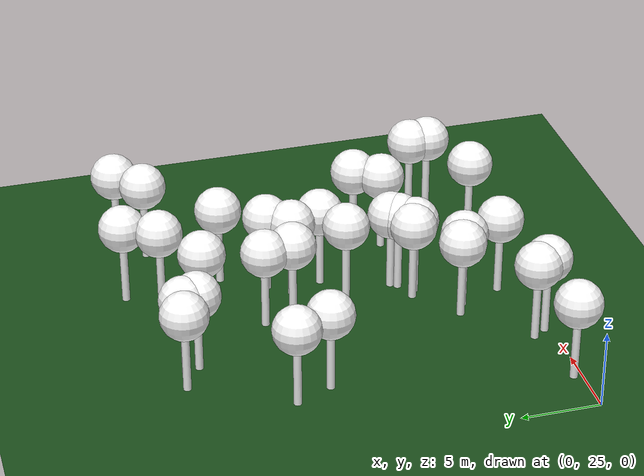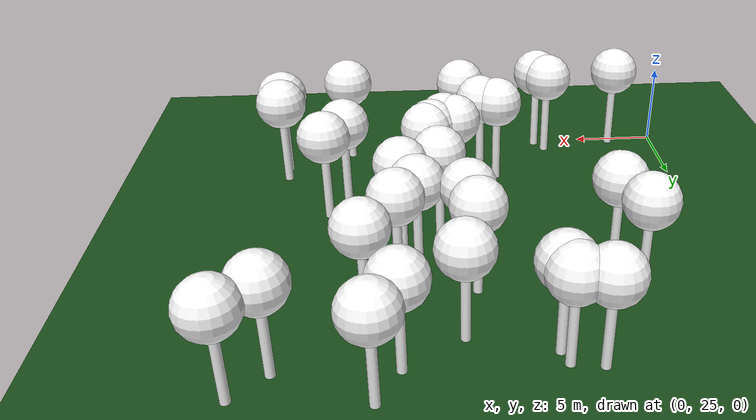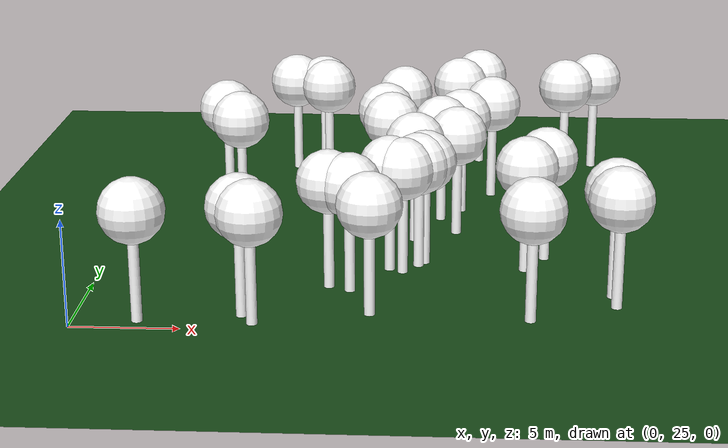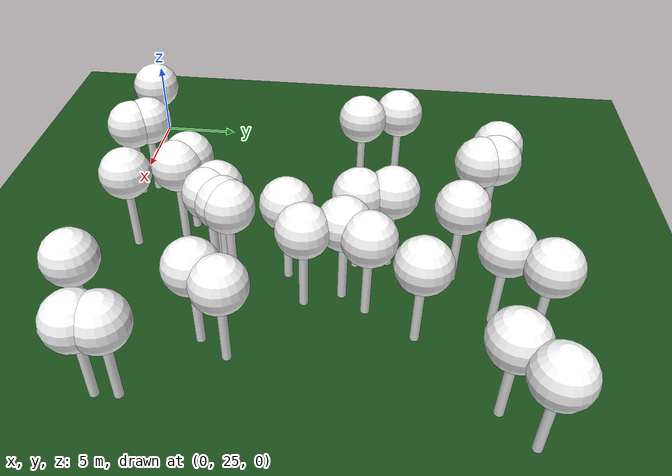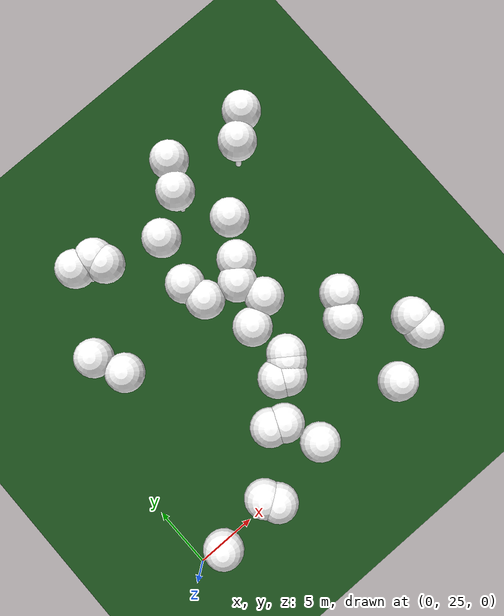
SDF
<sdf version="1.8">
 <world name="forest_world">
  <model name="tree_simple459">
   <static>1</static>
   <link name="link">
    <pose>0 0 0.1 0 -0 0</pose>
    <collision name="collision_trunk">
     <pose>0 0 2 0 -0 0</pose>
     <geometry><cylinder><radius>0.25</radius><length>4</length></cylinder></geometry>
    </collision>
    <collision name="collision_treetop">
     <pose>0 0 5.2 0 -0 0</pose>
     <geometry><sphere><radius>1.5</radius></sphere></geometry>
    </collision>
    <visual name="trunk">
     <pose>0 0 2 0 -0 0</pose>
     <geometry><cylinder><radius>0.25</radius><length>4</length></cylinder></geometry>
     <material>
      <ambient>0.5 0.5 0.5 1</ambient>
      <diffuse>1.0 1.0 1.0 1</diffuse>
      <specular>0.0 0.0 0.0 1</specular>
      <pbr>
       <metal>
        <albedo_map>../worlds/textures/tree_simple_trunk.jpg</albedo_map>
        <metalness>0.0</metalness>
        <roughness>0.8</roughness>
       </metal>
      </pbr>
     </material>
    </visual>
    <visual name="treetop">
     <pose>0 0 5.2 0 -0 0</pose>
     <geometry><sphere><radius>1.5</radius></sphere></geometry>
     <material>
      <ambient>0.5 0.5 0.5 1</ambient>
      <diffuse>1.0 1.0 1.0 1</diffuse>
      <specular>0.0 0.0 0.0 1</specular>
      <pbr>
       <metal>
        <albedo_map>../worlds/textures/tree_simple_treetop.jpg</albedo_map>
        <metalness>0.0</metalness>
        <roughness>0.9</roughness>
       </metal>
      </pbr>
     </material>
    </visual>
   </link>
   <pose>23.3051385383 47.6025012909 0 0 -0 0</pose>
  </model>
  <model name="tree_simple457">
   <static>1</static>
   <link name="link">
    <pose>0 0 0.1 0 -0 0</pose>
    <collision name="collision_trunk">
     <pose>0 0 2 0 -0 0</pose>
     <geometry><cylinder><radius>0.25</radius><length>4</length></cylinder></geometry>
    </collision>
    <collision name="collision_treetop">
     <pose>0 0 5.2 0 -0 0</pose>
     <geometry><sphere><radius>1.5</radius></sphere></geometry>
    </collision>
    <visual name="trunk">
     <pose>0 0 2 0 -0 0</pose>
     <geometry><cylinder><radius>0.25</radius><length>4</length></cylinder></geometry>
     <material>
      <ambient>0.5 0.5 0.5 1</ambient>
      <diffuse>1.0 1.0 1.0 1</diffuse>
      <specular>0.0 0.0 0.0 1</specular>
      <pbr>
       <metal>
        <albedo_map>../worlds/textures/tree_simple_trunk.jpg</albedo_map>
        <metalness>0.0</metalness>
        <roughness>0.8</roughness>
       </metal>
      </pbr>
     </material>
    </visual>
    <visual name="treetop">
     <pose>0 0 5.2 0 -0 0</pose>
     <geometry><sphere><radius>1.5</radius></sphere></geometry>
     <material>
      <ambient>0.5 0.5 0.5 1</ambient>
      <diffuse>1.0 1.0 1.0 1</diffuse>
      <specular>0.0 0.0 0.0 1</specular>
      <pbr>
       <metal>
        <albedo_map>../worlds/textures/tree_simple_treetop.jpg</albedo_map>
        <metalness>0.0</metalness>
        <roughness>0.9</roughness>
       </metal>
      </pbr>
     </material>
    </visual>
   </link>
   <pose>13.2865883098 26.7984826025 0 0 -0 0</pose>
  </model>
  <model name="tree_simple452">
   <static>1</static>
   <link name="link">
    <pose>0 0 0.1 0 -0 0</pose>
    <collision name="collision_trunk">
     <pose>0 0 2 0 -0 0</pose>
     <geometry><cylinder><radius>0.25</radius><length>4</length></cylinder></geometry>
    </collision>
    <collision name="collision_treetop">
     <pose>0 0 5.2 0 -0 0</pose>
     <geometry><sphere><radius>1.5</radius></sphere></geometry>
    </collision>
    <visual name="trunk">
     <pose>0 0 2 0 -0 0</pose>
     <geometry><cylinder><radius>0.25</radius><length>4</length></cylinder></geometry>
     <material>
      <ambient>0.5 0.5 0.5 1</ambient>
      <diffuse>1.0 1.0 1.0 1</diffuse>
      <specular>0.0 0.0 0.0 1</specular>
      <pbr>
       <metal>
        <albedo_map>../worlds/textures/tree_simple_trunk.jpg</albedo_map>
        <metalness>0.0</metalness>
        <roughness>0.8</roughness>
       </metal>
      </pbr>
     </material>
    </visual>
    <visual name="treetop">
     <pose>0 0 5.2 0 -0 0</pose>
     <geometry><sphere><radius>1.5</radius></sphere></geometry>
     <material>
      <ambient>0.5 0.5 0.5 1</ambient>
      <diffuse>1.0 1.0 1.0 1</diffuse>
      <specular>0.0 0.0 0.0 1</specular>
      <pbr>
       <metal>
        <albedo_map>../worlds/textures/tree_simple_treetop.jpg</albedo_map>
        <metalness>0.0</metalness>
        <roughness>0.9</roughness>
       </metal>
      </pbr>
     </material>
    </visual>
   </link>
   <pose>21.4881506157 34.0286005496 0 0 -0 0</pose>
  </model>
  <model name="tree_simple445">
   <static>1</static>
   <link name="link">
    <pose>0 0 0.1 0 -0 0</pose>
    <collision name="collision_trunk">
     <pose>0 0 2 0 -0 0</pose>
     <geometry><cylinder><radius>0.25</radius><length>4</length></cylinder></geometry>
    </collision>
    <collision name="collision_treetop">
     <pose>0 0 5.2 0 -0 0</pose>
     <geometry><sphere><radius>1.5</radius></sphere></geometry>
    </collision>
    <visual name="trunk">
     <pose>0 0 2 0 -0 0</pose>
     <geometry><cylinder><radius>0.25</radius><length>4</length></cylinder></geometry>
     <material>
      <ambient>0.5 0.5 0.5 1</ambient>
      <diffuse>1.0 1.0 1.0 1</diffuse>
      <specular>0.0 0.0 0.0 1</specular>
      <pbr>
       <metal>
        <albedo_map>../worlds/textures/tree_simple_trunk.jpg</albedo_map>
        <metalness>0.0</metalness>
        <roughness>0.8</roughness>
       </metal>
      </pbr>
     </material>
    </visual>
    <visual name="treetop">
     <pose>0 0 5.2 0 -0 0</pose>
     <geometry><sphere><radius>1.5</radius></sphere></geometry>
     <material>
      <ambient>0.5 0.5 0.5 1</ambient>
      <diffuse>1.0 1.0 1.0 1</diffuse>
      <specular>0.0 0.0 0.0 1</specular>
      <pbr>
       <metal>
        <albedo_map>../worlds/textures/tree_simple_treetop.jpg</albedo_map>
        <metalness>0.0</metalness>
        <roughness>0.9</roughness>
       </metal>
      </pbr>
     </material>
    </visual>
   </link>
   <pose>17.3330924595 47.7477611906 0 0 -0 0</pose>
  </model>
  <model name="tree_simple443">
   <static>1</static>
   <link name="link">
    <pose>0 0 0.1 0 -0 0</pose>
    <collision name="collision_trunk">
     <pose>0 0 2 0 -0 0</pose>
     <geometry><cylinder><radius>0.25</radius><length>4</length></cylinder></geometry>
    </collision>
    <collision name="collision_treetop">
     <pose>0 0 5.2 0 -0 0</pose>
     <geometry><sphere><radius>1.5</radius></sphere></geometry>
    </collision>
    <visual name="trunk">
     <pose>0 0 2 0 -0 0</pose>
     <geometry><cylinder><radius>0.25</radius><length>4</length></cylinder></geometry>
     <material>
      <ambient>0.5 0.5 0.5 1</ambient>
      <diffuse>1.0 1.0 1.0 1</diffuse>
      <specular>0.0 0.0 0.0 1</specular>
      <pbr>
       <metal>
        <albedo_map>../worlds/textures/tree_simple_trunk.jpg</albedo_map>
        <metalness>0.0</metalness>
        <roughness>0.8</roughness>
       </metal>
      </pbr>
     </material>
    </visual>
    <visual name="treetop">
     <pose>0 0 5.2 0 -0 0</pose>
     <geometry><sphere><radius>1.5</radius></sphere></geometry>
     <material>
      <ambient>0.5 0.5 0.5 1</ambient>
      <diffuse>1.0 1.0 1.0 1</diffuse>
      <specular>0.0 0.0 0.0 1</specular>
      <pbr>
       <metal>
        <albedo_map>../worlds/textures/tree_simple_treetop.jpg</albedo_map>
        <metalness>0.0</metalness>
        <roughness>0.9</roughness>
       </metal>
      </pbr>
     </material>
    </visual>
   </link>
   <pose>20.4518447393 32.4372971603 0 0 -0 0</pose>
  </model>
  <model name="tree_simple435">
   <static>1</static>
   <link name="link">
    <pose>0 0 0.1 0 -0 0</pose>
    <collision name="collision_trunk">
     <pose>0 0 2 0 -0 0</pose>
     <geometry><cylinder><radius>0.25</radius><length>4</length></cylinder></geometry>
    </collision>
    <collision name="collision_treetop">
     <pose>0 0 5.2 0 -0 0</pose>
     <geometry><sphere><radius>1.5</radius></sphere></geometry>
    </collision>
    <visual name="trunk">
     <pose>0 0 2 0 -0 0</pose>
     <geometry><cylinder><radius>0.25</radius><length>4</length></cylinder></geometry>
     <material>
      <ambient>0.5 0.5 0.5 1</ambient>
      <diffuse>1.0 1.0 1.0 1</diffuse>
      <specular>0.0 0.0 0.0 1</specular>
      <pbr>
       <metal>
        <albedo_map>../worlds/textures/tree_simple_trunk.jpg</albedo_map>
        <metalness>0.0</metalness>
        <roughness>0.8</roughness>
       </metal>
      </pbr>
     </material>
    </visual>
    <visual name="treetop">
     <pose>0 0 5.2 0 -0 0</pose>
     <geometry><sphere><radius>1.5</radius></sphere></geometry>
     <material>
      <ambient>0.5 0.5 0.5 1</ambient>
      <diffuse>1.0 1.0 1.0 1</diffuse>
      <specular>0.0 0.0 0.0 1</specular>
      <pbr>
       <metal>
        <albedo_map>../worlds/textures/tree_simple_treetop.jpg</albedo_map>
        <metalness>0.0</metalness>
        <roughness>0.9</roughness>
       </metal>
      </pbr>
     </material>
    </visual>
   </link>
   <pose>25.0532985597 49.162593115 0 0 -0 0</pose>
  </model>
  <model name="tree_simple419">
   <static>1</static>
   <link name="link">
    <pose>0 0 0.1 0 -0 0</pose>
    <collision name="collision_trunk">
     <pose>0 0 2 0 -0 0</pose>
     <geometry><cylinder><radius>0.25</radius><length>4</length></cylinder></geometry>
    </collision>
    <collision name="collision_treetop">
     <pose>0 0 5.2 0 -0 0</pose>
     <geometry><sphere><radius>1.5</radius></sphere></geometry>
    </collision>
    <visual name="trunk">
     <pose>0 0 2 0 -0 0</pose>
     <geometry><cylinder><radius>0.25</radius><length>4</length></cylinder></geometry>
     <material>
      <ambient>0.5 0.5 0.5 1</ambient>
      <diffuse>1.0 1.0 1.0 1</diffuse>
      <specular>0.0 0.0 0.0 1</specular>
      <pbr>
       <metal>
        <albedo_map>../worlds/textures/tree_simple_trunk.jpg</albedo_map>
        <metalness>0.0</metalness>
        <roughness>0.8</roughness>
       </metal>
      </pbr>
     </material>
    </visual>
    <visual name="treetop">
     <pose>0 0 5.2 0 -0 0</pose>
     <geometry><sphere><radius>1.5</radius></sphere></geometry>
     <material>
      <ambient>0.5 0.5 0.5 1</ambient>
      <diffuse>1.0 1.0 1.0 1</diffuse>
      <specular>0.0 0.0 0.0 1</specular>
      <pbr>
       <metal>
        <albedo_map>../worlds/textures/tree_simple_treetop.jpg</albedo_map>
        <metalness>0.0</metalness>
        <roughness>0.9</roughness>
       </metal>
      </pbr>
     </material>
    </visual>
   </link>
   <pose>15.0608261067 36.3391301174 0 0 -0 0</pose>
  </model>
  <model name="tree_simple413">
   <static>1</static>
   <link name="link">
    <pose>0 0 0.1 0 -0 0</pose>
    <collision name="collision_trunk">
     <pose>0 0 2 0 -0 0</pose>
     <geometry><cylinder><radius>0.25</radius><length>4</length></cylinder></geometry>
    </collision>
    <collision name="collision_treetop">
     <pose>0 0 5.2 0 -0 0</pose>
     <geometry><sphere><radius>1.5</radius></sphere></geometry>
    </collision>
    <visual name="trunk">
     <pose>0 0 2 0 -0 0</pose>
     <geometry><cylinder><radius>0.25</radius><length>4</length></cylinder></geometry>
     <material>
      <ambient>0.5 0.5 0.5 1</ambient>
      <diffuse>1.0 1.0 1.0 1</diffuse>
      <specular>0.0 0.0 0.0 1</specular>
      <pbr>
       <metal>
        <albedo_map>../worlds/textures/tree_simple_trunk.jpg</albedo_map>
        <metalness>0.0</metalness>
        <roughness>0.8</roughness>
       </metal>
      </pbr>
     </material>
    </visual>
    <visual name="treetop">
     <pose>0 0 5.2 0 -0 0</pose>
     <geometry><sphere><radius>1.5</radius></sphere></geometry>
     <material>
      <ambient>0.5 0.5 0.5 1</ambient>
      <diffuse>1.0 1.0 1.0 1</diffuse>
      <specular>0.0 0.0 0.0 1</specular>
      <pbr>
       <metal>
        <albedo_map>../worlds/textures/tree_simple_treetop.jpg</albedo_map>
        <metalness>0.0</metalness>
        <roughness>0.9</roughness>
       </metal>
      </pbr>
     </material>
    </visual>
   </link>
   <pose>4.79772995732 42.1907919742 0 0 -0 0</pose>
  </model>
  <model name="tree_simple405">
   <static>1</static>
   <link name="link">
    <pose>0 0 0.1 0 -0 0</pose>
    <collision name="collision_trunk">
     <pose>0 0 2 0 -0 0</pose>
     <geometry><cylinder><radius>0.25</radius><length>4</length></cylinder></geometry>
    </collision>
    <collision name="collision_treetop">
     <pose>0 0 5.2 0 -0 0</pose>
     <geometry><sphere><radius>1.5</radius></sphere></geometry>
    </collision>
    <visual name="trunk">
     <pose>0 0 2 0 -0 0</pose>
     <geometry><cylinder><radius>0.25</radius><length>4</length></cylinder></geometry>
     <material>
      <ambient>0.5 0.5 0.5 1</ambient>
      <diffuse>1.0 1.0 1.0 1</diffuse>
      <specular>0.0 0.0 0.0 1</specular>
      <pbr>
       <metal>
        <albedo_map>../worlds/textures/tree_simple_trunk.jpg</albedo_map>
        <metalness>0.0</metalness>
        <roughness>0.8</roughness>
       </metal>
      </pbr>
     </material>
    </visual>
    <visual name="treetop">
     <pose>0 0 5.2 0 -0 0</pose>
     <geometry><sphere><radius>1.5</radius></sphere></geometry>
     <material>
      <ambient>0.5 0.5 0.5 1</ambient>
      <diffuse>1.0 1.0 1.0 1</diffuse>
      <specular>0.0 0.0 0.0 1</specular>
      <pbr>
       <metal>
        <albedo_map>../worlds/textures/tree_simple_treetop.jpg</albedo_map>
        <metalness>0.0</metalness>
        <roughness>0.9</roughness>
       </metal>
      </pbr>
     </material>
    </visual>
   </link>
   <pose>13.9640568795 32.2793272532 0 0 -0 0</pose>
  </model>
  <model name="tree_simple401">
   <static>1</static>
   <link name="link">
    <pose>0 0 0.1 0 -0 0</pose>
    <collision name="collision_trunk">
     <pose>0 0 2 0 -0 0</pose>
     <geometry><cylinder><radius>0.25</radius><length>4</length></cylinder></geometry>
    </collision>
    <collision name="collision_treetop">
     <pose>0 0 5.2 0 -0 0</pose>
     <geometry><sphere><radius>1.5</radius></sphere></geometry>
    </collision>
    <visual name="trunk">
     <pose>0 0 2 0 -0 0</pose>
     <geometry><cylinder><radius>0.25</radius><length>4</length></cylinder></geometry>
     <material>
      <ambient>0.5 0.5 0.5 1</ambient>
      <diffuse>1.0 1.0 1.0 1</diffuse>
      <specular>0.0 0.0 0.0 1</specular>
      <pbr>
       <metal>
        <albedo_map>../worlds/textures/tree_simple_trunk.jpg</albedo_map>
        <metalness>0.0</metalness>
        <roughness>0.8</roughness>
       </metal>
      </pbr>
     </material>
    </visual>
    <visual name="treetop">
     <pose>0 0 5.2 0 -0 0</pose>
     <geometry><sphere><radius>1.5</radius></sphere></geometry>
     <material>
      <ambient>0.5 0.5 0.5 1</ambient>
      <diffuse>1.0 1.0 1.0 1</diffuse>
      <specular>0.0 0.0 0.0 1</specular>
      <pbr>
       <metal>
        <albedo_map>../worlds/textures/tree_simple_treetop.jpg</albedo_map>
        <metalness>0.0</metalness>
        <roughness>0.9</roughness>
       </metal>
      </pbr>
     </material>
    </visual>
   </link>
   <pose>18.5119614972 49.8300347258 0 0 -0 0</pose>
  </model>
  <model name="tree_simple381">
   <static>1</static>
   <link name="link">
    <pose>0 0 0.1 0 -0 0</pose>
    <collision name="collision_trunk">
     <pose>0 0 2 0 -0 0</pose>
     <geometry><cylinder><radius>0.25</radius><length>4</length></cylinder></geometry>
    </collision>
    <collision name="collision_treetop">
     <pose>0 0 5.2 0 -0 0</pose>
     <geometry><sphere><radius>1.5</radius></sphere></geometry>
    </collision>
    <visual name="trunk">
     <pose>0 0 2 0 -0 0</pose>
     <geometry><cylinder><radius>0.25</radius><length>4</length></cylinder></geometry>
     <material>
      <ambient>0.5 0.5 0.5 1</ambient>
      <diffuse>1.0 1.0 1.0 1</diffuse>
      <specular>0.0 0.0 0.0 1</specular>
      <pbr>
       <metal>
        <albedo_map>../worlds/textures/tree_simple_trunk.jpg</albedo_map>
        <metalness>0.0</metalness>
        <roughness>0.8</roughness>
       </metal>
      </pbr>
     </material>
    </visual>
    <visual name="treetop">
     <pose>0 0 5.2 0 -0 0</pose>
     <geometry><sphere><radius>1.5</radius></sphere></geometry>
     <material>
      <ambient>0.5 0.5 0.5 1</ambient>
      <diffuse>1.0 1.0 1.0 1</diffuse>
      <specular>0.0 0.0 0.0 1</specular>
      <pbr>
       <metal>
        <albedo_map>../worlds/textures/tree_simple_treetop.jpg</albedo_map>
        <metalness>0.0</metalness>
        <roughness>0.9</roughness>
       </metal>
      </pbr>
     </material>
    </visual>
   </link>
   <pose>14.598493672 31.9609585056 0 0 -0 0</pose>
  </model>
  <model name="tree_simple372">
   <static>1</static>
   <link name="link">
    <pose>0 0 0.1 0 -0 0</pose>
    <collision name="collision_trunk">
     <pose>0 0 2 0 -0 0</pose>
     <geometry><cylinder><radius>0.25</radius><length>4</length></cylinder></geometry>
    </collision>
    <collision name="collision_treetop">
     <pose>0 0 5.2 0 -0 0</pose>
     <geometry><sphere><radius>1.5</radius></sphere></geometry>
    </collision>
    <visual name="trunk">
     <pose>0 0 2 0 -0 0</pose>
     <geometry><cylinder><radius>0.25</radius><length>4</length></cylinder></geometry>
     <material>
      <ambient>0.5 0.5 0.5 1</ambient>
      <diffuse>1.0 1.0 1.0 1</diffuse>
      <specular>0.0 0.0 0.0 1</specular>
      <pbr>
       <metal>
        <albedo_map>../worlds/textures/tree_simple_trunk.jpg</albedo_map>
        <metalness>0.0</metalness>
        <roughness>0.8</roughness>
       </metal>
      </pbr>
     </material>
    </visual>
    <visual name="treetop">
     <pose>0 0 5.2 0 -0 0</pose>
     <geometry><sphere><radius>1.5</radius></sphere></geometry>
     <material>
      <ambient>0.5 0.5 0.5 1</ambient>
      <diffuse>1.0 1.0 1.0 1</diffuse>
      <specular>0.0 0.0 0.0 1</specular>
      <pbr>
       <metal>
        <albedo_map>../worlds/textures/tree_simple_treetop.jpg</albedo_map>
        <metalness>0.0</metalness>
        <roughness>0.9</roughness>
       </metal>
      </pbr>
     </material>
    </visual>
   </link>
   <pose>19.0807104519 43.6051965294 0 0 -0 0</pose>
  </model>
  <model name="tree_simple367">
   <static>1</static>
   <link name="link">
    <pose>0 0 0.1 0 -0 0</pose>
    <collision name="collision_trunk">
     <pose>0 0 2 0 -0 0</pose>
     <geometry><cylinder><radius>0.25</radius><length>4</length></cylinder></geometry>
    </collision>
    <collision name="collision_treetop">
     <pose>0 0 5.2 0 -0 0</pose>
     <geometry><sphere><radius>1.5</radius></sphere></geometry>
    </collision>
    <visual name="trunk">
     <pose>0 0 2 0 -0 0</pose>
     <geometry><cylinder><radius>0.25</radius><length>4</length></cylinder></geometry>
     <material>
      <ambient>0.5 0.5 0.5 1</ambient>
      <diffuse>1.0 1.0 1.0 1</diffuse>
      <specular>0.0 0.0 0.0 1</specular>
      <pbr>
       <metal>
        <albedo_map>../worlds/textures/tree_simple_trunk.jpg</albedo_map>
        <metalness>0.0</metalness>
        <roughness>0.8</roughness>
       </metal>
      </pbr>
     </material>
    </visual>
    <visual name="treetop">
     <pose>0 0 5.2 0 -0 0</pose>
     <geometry><sphere><radius>1.5</radius></sphere></geometry>
     <material>
      <ambient>0.5 0.5 0.5 1</ambient>
      <diffuse>1.0 1.0 1.0 1</diffuse>
      <specular>0.0 0.0 0.0 1</specular>
      <pbr>
       <metal>
        <albedo_map>../worlds/textures/tree_simple_treetop.jpg</albedo_map>
        <metalness>0.0</metalness>
        <roughness>0.9</roughness>
       </metal>
      </pbr>
     </material>
    </visual>
   </link>
   <pose>14.2659299001 45.7179827091 0 0 -0 0</pose>
  </model>
  <model name="tree_simple365">
   <static>1</static>
   <link name="link">
    <pose>0 0 0.1 0 -0 0</pose>
    <collision name="collision_trunk">
     <pose>0 0 2 0 -0 0</pose>
     <geometry><cylinder><radius>0.25</radius><length>4</length></cylinder></geometry>
    </collision>
    <collision name="collision_treetop">
     <pose>0 0 5.2 0 -0 0</pose>
     <geometry><sphere><radius>1.5</radius></sphere></geometry>
    </collision>
    <visual name="trunk">
     <pose>0 0 2 0 -0 0</pose>
     <geometry><cylinder><radius>0.25</radius><length>4</length></cylinder></geometry>
     <material>
      <ambient>0.5 0.5 0.5 1</ambient>
      <diffuse>1.0 1.0 1.0 1</diffuse>
      <specular>0.0 0.0 0.0 1</specular>
      <pbr>
       <metal>
        <albedo_map>../worlds/textures/tree_simple_trunk.jpg</albedo_map>
        <metalness>0.0</metalness>
        <roughness>0.8</roughness>
       </metal>
      </pbr>
     </material>
    </visual>
    <visual name="treetop">
     <pose>0 0 5.2 0 -0 0</pose>
     <geometry><sphere><radius>1.5</radius></sphere></geometry>
     <material>
      <ambient>0.5 0.5 0.5 1</ambient>
      <diffuse>1.0 1.0 1.0 1</diffuse>
      <specular>0.0 0.0 0.0 1</specular>
      <pbr>
       <metal>
        <albedo_map>../worlds/textures/tree_simple_treetop.jpg</albedo_map>
        <metalness>0.0</metalness>
        <roughness>0.9</roughness>
       </metal>
      </pbr>
     </material>
    </visual>
   </link>
   <pose>7.96669325113 48.1339153876 0 0 -0 0</pose>
  </model>
  <model name="tree_simple340">
   <static>1</static>
   <link name="link">
    <pose>0 0 0.1 0 -0 0</pose>
    <collision name="collision_trunk">
     <pose>0 0 2 0 -0 0</pose>
     <geometry><cylinder><radius>0.25</radius><length>4</length></cylinder></geometry>
    </collision>
    <collision name="collision_treetop">
     <pose>0 0 5.2 0 -0 0</pose>
     <geometry><sphere><radius>1.5</radius></sphere></geometry>
    </collision>
    <visual name="trunk">
     <pose>0 0 2 0 -0 0</pose>
     <geometry><cylinder><radius>0.25</radius><length>4</length></cylinder></geometry>
     <material>
      <ambient>0.5 0.5 0.5 1</ambient>
      <diffuse>1.0 1.0 1.0 1</diffuse>
      <specular>0.0 0.0 0.0 1</specular>
      <pbr>
       <metal>
        <albedo_map>../worlds/textures/tree_simple_trunk.jpg</albedo_map>
        <metalness>0.0</metalness>
        <roughness>0.8</roughness>
       </metal>
      </pbr>
     </material>
    </visual>
    <visual name="treetop">
     <pose>0 0 5.2 0 -0 0</pose>
     <geometry><sphere><radius>1.5</radius></sphere></geometry>
     <material>
      <ambient>0.5 0.5 0.5 1</ambient>
      <diffuse>1.0 1.0 1.0 1</diffuse>
      <specular>0.0 0.0 0.0 1</specular>
      <pbr>
       <metal>
        <albedo_map>../worlds/textures/tree_simple_treetop.jpg</albedo_map>
        <metalness>0.0</metalness>
        <roughness>0.9</roughness>
       </metal>
      </pbr>
     </material>
    </visual>
   </link>
   <pose>15.6359324045 33.2415832038 0 0 -0 0</pose>
  </model>
  <model name="tree_simple339">
   <static>1</static>
   <link name="link">
    <pose>0 0 0.1 0 -0 0</pose>
    <collision name="collision_trunk">
     <pose>0 0 2 0 -0 0</pose>
     <geometry><cylinder><radius>0.25</radius><length>4</length></cylinder></geometry>
    </collision>
    <collision name="collision_treetop">
     <pose>0 0 5.2 0 -0 0</pose>
     <geometry><sphere><radius>1.5</radius></sphere></geometry>
    </collision>
    <visual name="trunk">
     <pose>0 0 2 0 -0 0</pose>
     <geometry><cylinder><radius>0.25</radius><length>4</length></cylinder></geometry>
     <material>
      <ambient>0.5 0.5 0.5 1</ambient>
      <diffuse>1.0 1.0 1.0 1</diffuse>
      <specular>0.0 0.0 0.0 1</specular>
      <pbr>
       <metal>
        <albedo_map>../worlds/textures/tree_simple_trunk.jpg</albedo_map>
        <metalness>0.0</metalness>
        <roughness>0.8</roughness>
       </metal>
      </pbr>
     </material>
    </visual>
    <visual name="treetop">
     <pose>0 0 5.2 0 -0 0</pose>
     <geometry><sphere><radius>1.5</radius></sphere></geometry>
     <material>
      <ambient>0.5 0.5 0.5 1</ambient>
      <diffuse>1.0 1.0 1.0 1</diffuse>
      <specular>0.0 0.0 0.0 1</specular>
      <pbr>
       <metal>
        <albedo_map>../worlds/textures/tree_simple_treetop.jpg</albedo_map>
        <metalness>0.0</metalness>
        <roughness>0.9</roughness>
       </metal>
      </pbr>
     </material>
    </visual>
   </link>
   <pose>8.14193712957 25.5166560065 0 0 -0 0</pose>
  </model>
  <model name="tree_simple325">
   <static>1</static>
   <link name="link">
    <pose>0 0 0.1 0 -0 0</pose>
    <collision name="collision_trunk">
     <pose>0 0 2 0 -0 0</pose>
     <geometry><cylinder><radius>0.25</radius><length>4</length></cylinder></geometry>
    </collision>
    <collision name="collision_treetop">
     <pose>0 0 5.2 0 -0 0</pose>
     <geometry><sphere><radius>1.5</radius></sphere></geometry>
    </collision>
    <visual name="trunk">
     <pose>0 0 2 0 -0 0</pose>
     <geometry><cylinder><radius>0.25</radius><length>4</length></cylinder></geometry>
     <material>
      <ambient>0.5 0.5 0.5 1</ambient>
      <diffuse>1.0 1.0 1.0 1</diffuse>
      <specular>0.0 0.0 0.0 1</specular>
      <pbr>
       <metal>
        <albedo_map>../worlds/textures/tree_simple_trunk.jpg</albedo_map>
        <metalness>0.0</metalness>
        <roughness>0.8</roughness>
       </metal>
      </pbr>
     </material>
    </visual>
    <visual name="treetop">
     <pose>0 0 5.2 0 -0 0</pose>
     <geometry><sphere><radius>1.5</radius></sphere></geometry>
     <material>
      <ambient>0.5 0.5 0.5 1</ambient>
      <diffuse>1.0 1.0 1.0 1</diffuse>
      <specular>0.0 0.0 0.0 1</specular>
      <pbr>
       <metal>
        <albedo_map>../worlds/textures/tree_simple_treetop.jpg</albedo_map>
        <metalness>0.0</metalness>
        <roughness>0.9</roughness>
       </metal>
      </pbr>
     </material>
    </visual>
   </link>
   <pose>16.3512762839 39.5353955834 0 0 -0 0</pose>
  </model>
  <model name="tree_simple320">
   <static>1</static>
   <link name="link">
    <pose>0 0 0.1 0 -0 0</pose>
    <collision name="collision_trunk">
     <pose>0 0 2 0 -0 0</pose>
     <geometry><cylinder><radius>0.25</radius><length>4</length></cylinder></geometry>
    </collision>
    <collision name="collision_treetop">
     <pose>0 0 5.2 0 -0 0</pose>
     <geometry><sphere><radius>1.5</radius></sphere></geometry>
    </collision>
    <visual name="trunk">
     <pose>0 0 2 0 -0 0</pose>
     <geometry><cylinder><radius>0.25</radius><length>4</length></cylinder></geometry>
     <material>
      <ambient>0.5 0.5 0.5 1</ambient>
      <diffuse>1.0 1.0 1.0 1</diffuse>
      <specular>0.0 0.0 0.0 1</specular>
      <pbr>
       <metal>
        <albedo_map>../worlds/textures/tree_simple_trunk.jpg</albedo_map>
        <metalness>0.0</metalness>
        <roughness>0.8</roughness>
       </metal>
      </pbr>
     </material>
    </visual>
    <visual name="treetop">
     <pose>0 0 5.2 0 -0 0</pose>
     <geometry><sphere><radius>1.5</radius></sphere></geometry>
     <material>
      <ambient>0.5 0.5 0.5 1</ambient>
      <diffuse>1.0 1.0 1.0 1</diffuse>
      <specular>0.0 0.0 0.0 1</specular>
      <pbr>
       <metal>
        <albedo_map>../worlds/textures/tree_simple_treetop.jpg</albedo_map>
        <metalness>0.0</metalness>
        <roughness>0.9</roughness>
       </metal>
      </pbr>
     </material>
    </visual>
   </link>
   <pose>17.4267796311 40.9028236297 0 0 -0 0</pose>
  </model>
  <model name="tree_simple295">
   <static>1</static>
   <link name="link">
    <pose>0 0 0.1 0 -0 0</pose>
    <collision name="collision_trunk">
     <pose>0 0 2 0 -0 0</pose>
     <geometry><cylinder><radius>0.25</radius><length>4</length></cylinder></geometry>
    </collision>
    <collision name="collision_treetop">
     <pose>0 0 5.2 0 -0 0</pose>
     <geometry><sphere><radius>1.5</radius></sphere></geometry>
    </collision>
    <visual name="trunk">
     <pose>0 0 2 0 -0 0</pose>
     <geometry><cylinder><radius>0.25</radius><length>4</length></cylinder></geometry>
     <material>
      <ambient>0.5 0.5 0.5 1</ambient>
      <diffuse>1.0 1.0 1.0 1</diffuse>
      <specular>0.0 0.0 0.0 1</specular>
      <pbr>
       <metal>
        <albedo_map>../worlds/textures/tree_simple_trunk.jpg</albedo_map>
        <metalness>0.0</metalness>
        <roughness>0.8</roughness>
       </metal>
      </pbr>
     </material>
    </visual>
    <visual name="treetop">
     <pose>0 0 5.2 0 -0 0</pose>
     <geometry><sphere><radius>1.5</radius></sphere></geometry>
     <material>
      <ambient>0.5 0.5 0.5 1</ambient>
      <diffuse>1.0 1.0 1.0 1</diffuse>
      <specular>0.0 0.0 0.0 1</specular>
      <pbr>
       <metal>
        <albedo_map>../worlds/textures/tree_simple_treetop.jpg</albedo_map>
        <metalness>0.0</metalness>
        <roughness>0.9</roughness>
       </metal>
      </pbr>
     </material>
    </visual>
   </link>
   <pose>24.4545500201 28.0657933919 0 0 -0 0</pose>
  </model>
  <model name="tree_simple287">
   <static>1</static>
   <link name="link">
    <pose>0 0 0.1 0 -0 0</pose>
    <collision name="collision_trunk">
     <pose>0 0 2 0 -0 0</pose>
     <geometry><cylinder><radius>0.25</radius><length>4</length></cylinder></geometry>
    </collision>
    <collision name="collision_treetop">
     <pose>0 0 5.2 0 -0 0</pose>
     <geometry><sphere><radius>1.5</radius></sphere></geometry>
    </collision>
    <visual name="trunk">
     <pose>0 0 2 0 -0 0</pose>
     <geometry><cylinder><radius>0.25</radius><length>4</length></cylinder></geometry>
     <material>
      <ambient>0.5 0.5 0.5 1</ambient>
      <diffuse>1.0 1.0 1.0 1</diffuse>
      <specular>0.0 0.0 0.0 1</specular>
      <pbr>
       <metal>
        <albedo_map>../worlds/textures/tree_simple_trunk.jpg</albedo_map>
        <metalness>0.0</metalness>
        <roughness>0.8</roughness>
       </metal>
      </pbr>
     </material>
    </visual>
    <visual name="treetop">
     <pose>0 0 5.2 0 -0 0</pose>
     <geometry><sphere><radius>1.5</radius></sphere></geometry>
     <material>
      <ambient>0.5 0.5 0.5 1</ambient>
      <diffuse>1.0 1.0 1.0 1</diffuse>
      <specular>0.0 0.0 0.0 1</specular>
      <pbr>
       <metal>
        <albedo_map>../worlds/textures/tree_simple_treetop.jpg</albedo_map>
        <metalness>0.0</metalness>
        <roughness>0.9</roughness>
       </metal>
      </pbr>
     </material>
    </visual>
   </link>
   <pose>5.81960290033 39.8953620518 0 0 -0 0</pose>
  </model>
  <model name="tree_simple275">
   <static>1</static>
   <link name="link">
    <pose>0 0 0.1 0 -0 0</pose>
    <collision name="collision_trunk">
     <pose>0 0 2 0 -0 0</pose>
     <geometry><cylinder><radius>0.25</radius><length>4</length></cylinder></geometry>
    </collision>
    <collision name="collision_treetop">
     <pose>0 0 5.2 0 -0 0</pose>
     <geometry><sphere><radius>1.5</radius></sphere></geometry>
    </collision>
    <visual name="trunk">
     <pose>0 0 2 0 -0 0</pose>
     <geometry><cylinder><radius>0.25</radius><length>4</length></cylinder></geometry>
     <material>
      <ambient>0.5 0.5 0.5 1</ambient>
      <diffuse>1.0 1.0 1.0 1</diffuse>
      <specular>0.0 0.0 0.0 1</specular>
      <pbr>
       <metal>
        <albedo_map>../worlds/textures/tree_simple_trunk.jpg</albedo_map>
        <metalness>0.0</metalness>
        <roughness>0.8</roughness>
       </metal>
      </pbr>
     </material>
    </visual>
    <visual name="treetop">
     <pose>0 0 5.2 0 -0 0</pose>
     <geometry><sphere><radius>1.5</radius></sphere></geometry>
     <material>
      <ambient>0.5 0.5 0.5 1</ambient>
      <diffuse>1.0 1.0 1.0 1</diffuse>
      <specular>0.0 0.0 0.0 1</specular>
      <pbr>
       <metal>
        <albedo_map>../worlds/textures/tree_simple_treetop.jpg</albedo_map>
        <metalness>0.0</metalness>
        <roughness>0.9</roughness>
       </metal>
      </pbr>
     </material>
    </visual>
   </link>
   <pose>11.2194181464 29.9629539421 0 0 -0 0</pose>
  </model>
  <model name="tree_simple260">
   <static>1</static>
   <link name="link">
    <pose>0 0 0.1 0 -0 0</pose>
    <collision name="collision_trunk">
     <pose>0 0 2 0 -0 0</pose>
     <geometry><cylinder><radius>0.25</radius><length>4</length></cylinder></geometry>
    </collision>
    <collision name="collision_treetop">
     <pose>0 0 5.2 0 -0 0</pose>
     <geometry><sphere><radius>1.5</radius></sphere></geometry>
    </collision>
    <visual name="trunk">
     <pose>0 0 2 0 -0 0</pose>
     <geometry><cylinder><radius>0.25</radius><length>4</length></cylinder></geometry>
     <material>
      <ambient>0.5 0.5 0.5 1</ambient>
      <diffuse>1.0 1.0 1.0 1</diffuse>
      <specular>0.0 0.0 0.0 1</specular>
      <pbr>
       <metal>
        <albedo_map>../worlds/textures/tree_simple_trunk.jpg</albedo_map>
        <metalness>0.0</metalness>
        <roughness>0.8</roughness>
       </metal>
      </pbr>
     </material>
    </visual>
    <visual name="treetop">
     <pose>0 0 5.2 0 -0 0</pose>
     <geometry><sphere><radius>1.5</radius></sphere></geometry>
     <material>
      <ambient>0.5 0.5 0.5 1</ambient>
      <diffuse>1.0 1.0 1.0 1</diffuse>
      <specular>0.0 0.0 0.0 1</specular>
      <pbr>
       <metal>
        <albedo_map>../worlds/textures/tree_simple_treetop.jpg</albedo_map>
        <metalness>0.0</metalness>
        <roughness>0.9</roughness>
       </metal>
      </pbr>
     </material>
    </visual>
   </link>
   <pose>20.4747246255 26.3739745209 0 0 -0 0</pose>
  </model>
  <model name="tree_simple258">
   <static>1</static>
   <link name="link">
    <pose>0 0 0.1 0 -0 0</pose>
    <collision name="collision_trunk">
     <pose>0 0 2 0 -0 0</pose>
     <geometry><cylinder><radius>0.25</radius><length>4</length></cylinder></geometry>
    </collision>
    <collision name="collision_treetop">
     <pose>0 0 5.2 0 -0 0</pose>
     <geometry><sphere><radius>1.5</radius></sphere></geometry>
    </collision>
    <visual name="trunk">
     <pose>0 0 2 0 -0 0</pose>
     <geometry><cylinder><radius>0.25</radius><length>4</length></cylinder></geometry>
     <material>
      <ambient>0.5 0.5 0.5 1</ambient>
      <diffuse>1.0 1.0 1.0 1</diffuse>
      <specular>0.0 0.0 0.0 1</specular>
      <pbr>
       <metal>
        <albedo_map>../worlds/textures/tree_simple_trunk.jpg</albedo_map>
        <metalness>0.0</metalness>
        <roughness>0.8</roughness>
       </metal>
      </pbr>
     </material>
    </visual>
    <visual name="treetop">
     <pose>0 0 5.2 0 -0 0</pose>
     <geometry><sphere><radius>1.5</radius></sphere></geometry>
     <material>
      <ambient>0.5 0.5 0.5 1</ambient>
      <diffuse>1.0 1.0 1.0 1</diffuse>
      <specular>0.0 0.0 0.0 1</specular>
      <pbr>
       <metal>
        <albedo_map>../worlds/textures/tree_simple_treetop.jpg</albedo_map>
        <metalness>0.0</metalness>
        <roughness>0.9</roughness>
       </metal>
      </pbr>
     </material>
    </visual>
   </link>
   <pose>24.3825797899 29.2966391115 0 0 -0 0</pose>
  </model>
  <model name="tree_simple254">
   <static>1</static>
   <link name="link">
    <pose>0 0 0.1 0 -0 0</pose>
    <collision name="collision_trunk">
     <pose>0 0 2 0 -0 0</pose>
     <geometry><cylinder><radius>0.25</radius><length>4</length></cylinder></geometry>
    </collision>
    <collision name="collision_treetop">
     <pose>0 0 5.2 0 -0 0</pose>
     <geometry><sphere><radius>1.5</radius></sphere></geometry>
    </collision>
    <visual name="trunk">
     <pose>0 0 2 0 -0 0</pose>
     <geometry><cylinder><radius>0.25</radius><length>4</length></cylinder></geometry>
     <material>
      <ambient>0.5 0.5 0.5 1</ambient>
      <diffuse>1.0 1.0 1.0 1</diffuse>
      <specular>0.0 0.0 0.0 1</specular>
      <pbr>
       <metal>
        <albedo_map>../worlds/textures/tree_simple_trunk.jpg</albedo_map>
        <metalness>0.0</metalness>
        <roughness>0.8</roughness>
       </metal>
      </pbr>
     </material>
    </visual>
    <visual name="treetop">
     <pose>0 0 5.2 0 -0 0</pose>
     <geometry><sphere><radius>1.5</radius></sphere></geometry>
     <material>
      <ambient>0.5 0.5 0.5 1</ambient>
      <diffuse>1.0 1.0 1.0 1</diffuse>
      <specular>0.0 0.0 0.0 1</specular>
      <pbr>
       <metal>
        <albedo_map>../worlds/textures/tree_simple_treetop.jpg</albedo_map>
        <metalness>0.0</metalness>
        <roughness>0.9</roughness>
       </metal>
      </pbr>
     </material>
    </visual>
   </link>
   <pose>13.3684370787 41.9999258399 0 0 -0 0</pose>
  </model>
  <model name="tree_simple229">
   <static>1</static>
   <link name="link">
    <pose>0 0 0.1 0 -0 0</pose>
    <collision name="collision_trunk">
     <pose>0 0 2 0 -0 0</pose>
     <geometry><cylinder><radius>0.25</radius><length>4</length></cylinder></geometry>
    </collision>
    <collision name="collision_treetop">
     <pose>0 0 5.2 0 -0 0</pose>
     <geometry><sphere><radius>1.5</radius></sphere></geometry>
    </collision>
    <visual name="trunk">
     <pose>0 0 2 0 -0 0</pose>
     <geometry><cylinder><radius>0.25</radius><length>4</length></cylinder></geometry>
     <material>
      <ambient>0.5 0.5 0.5 1</ambient>
      <diffuse>1.0 1.0 1.0 1</diffuse>
      <specular>0.0 0.0 0.0 1</specular>
      <pbr>
       <metal>
        <albedo_map>../worlds/textures/tree_simple_trunk.jpg</albedo_map>
        <metalness>0.0</metalness>
        <roughness>0.8</roughness>
       </metal>
      </pbr>
     </material>
    </visual>
    <visual name="treetop">
     <pose>0 0 5.2 0 -0 0</pose>
     <geometry><sphere><radius>1.5</radius></sphere></geometry>
     <material>
      <ambient>0.5 0.5 0.5 1</ambient>
      <diffuse>1.0 1.0 1.0 1</diffuse>
      <specular>0.0 0.0 0.0 1</specular>
      <pbr>
       <metal>
        <albedo_map>../worlds/textures/tree_simple_treetop.jpg</albedo_map>
        <metalness>0.0</metalness>
        <roughness>0.9</roughness>
       </metal>
      </pbr>
     </material>
    </visual>
   </link>
   <pose>17.1703693381 37.4765229217 0 0 -0 0</pose>
  </model>
  <model name="tree_simple196">
   <static>1</static>
   <link name="link">
    <pose>0 0 0.1 0 -0 0</pose>
    <collision name="collision_trunk">
     <pose>0 0 2 0 -0 0</pose>
     <geometry><cylinder><radius>0.25</radius><length>4</length></cylinder></geometry>
    </collision>
    <collision name="collision_treetop">
     <pose>0 0 5.2 0 -0 0</pose>
     <geometry><sphere><radius>1.5</radius></sphere></geometry>
    </collision>
    <visual name="trunk">
     <pose>0 0 2 0 -0 0</pose>
     <geometry><cylinder><radius>0.25</radius><length>4</length></cylinder></geometry>
     <material>
      <ambient>0.5 0.5 0.5 1</ambient>
      <diffuse>1.0 1.0 1.0 1</diffuse>
      <specular>0.0 0.0 0.0 1</specular>
      <pbr>
       <metal>
        <albedo_map>../worlds/textures/tree_simple_trunk.jpg</albedo_map>
        <metalness>0.0</metalness>
        <roughness>0.8</roughness>
       </metal>
      </pbr>
     </material>
    </visual>
    <visual name="treetop">
     <pose>0 0 5.2 0 -0 0</pose>
     <geometry><sphere><radius>1.5</radius></sphere></geometry>
     <material>
      <ambient>0.5 0.5 0.5 1</ambient>
      <diffuse>1.0 1.0 1.0 1</diffuse>
      <specular>0.0 0.0 0.0 1</specular>
      <pbr>
       <metal>
        <albedo_map>../worlds/textures/tree_simple_treetop.jpg</albedo_map>
        <metalness>0.0</metalness>
        <roughness>0.9</roughness>
       </metal>
      </pbr>
     </material>
    </visual>
   </link>
   <pose>13.7422198568 40.1413468751 0 0 -0 0</pose>
  </model>
  <model name="tree_simple189">
   <static>1</static>
   <link name="link">
    <pose>0 0 0.1 0 -0 0</pose>
    <collision name="collision_trunk">
     <pose>0 0 2 0 -0 0</pose>
     <geometry><cylinder><radius>0.25</radius><length>4</length></cylinder></geometry>
    </collision>
    <collision name="collision_treetop">
     <pose>0 0 5.2 0 -0 0</pose>
     <geometry><sphere><radius>1.5</radius></sphere></geometry>
    </collision>
    <visual name="trunk">
     <pose>0 0 2 0 -0 0</pose>
     <geometry><cylinder><radius>0.25</radius><length>4</length></cylinder></geometry>
     <material>
      <ambient>0.5 0.5 0.5 1</ambient>
      <diffuse>1.0 1.0 1.0 1</diffuse>
      <specular>0.0 0.0 0.0 1</specular>
      <pbr>
       <metal>
        <albedo_map>../worlds/textures/tree_simple_trunk.jpg</albedo_map>
        <metalness>0.0</metalness>
        <roughness>0.8</roughness>
       </metal>
      </pbr>
     </material>
    </visual>
    <visual name="treetop">
     <pose>0 0 5.2 0 -0 0</pose>
     <geometry><sphere><radius>1.5</radius></sphere></geometry>
     <material>
      <ambient>0.5 0.5 0.5 1</ambient>
      <diffuse>1.0 1.0 1.0 1</diffuse>
      <specular>0.0 0.0 0.0 1</specular>
      <pbr>
       <metal>
        <albedo_map>../worlds/textures/tree_simple_treetop.jpg</albedo_map>
        <metalness>0.0</metalness>
        <roughness>0.9</roughness>
       </metal>
      </pbr>
     </material>
    </visual>
   </link>
   <pose>7.56705231804 26.3742867244 0 0 -0 0</pose>
  </model>
  <model name="tree_simple170">
   <static>1</static>
   <link name="link">
    <pose>0 0 0.1 0 -0 0</pose>
    <collision name="collision_trunk">
     <pose>0 0 2 0 -0 0</pose>
     <geometry><cylinder><radius>0.25</radius><length>4</length></cylinder></geometry>
    </collision>
    <collision name="collision_treetop">
     <pose>0 0 5.2 0 -0 0</pose>
     <geometry><sphere><radius>1.5</radius></sphere></geometry>
    </collision>
    <visual name="trunk">
     <pose>0 0 2 0 -0 0</pose>
     <geometry><cylinder><radius>0.25</radius><length>4</length></cylinder></geometry>
     <material>
      <ambient>0.5 0.5 0.5 1</ambient>
      <diffuse>1.0 1.0 1.0 1</diffuse>
      <specular>0.0 0.0 0.0 1</specular>
      <pbr>
       <metal>
        <albedo_map>../worlds/textures/tree_simple_trunk.jpg</albedo_map>
        <metalness>0.0</metalness>
        <roughness>0.8</roughness>
       </metal>
      </pbr>
     </material>
    </visual>
    <visual name="treetop">
     <pose>0 0 5.2 0 -0 0</pose>
     <geometry><sphere><radius>1.5</radius></sphere></geometry>
     <material>
      <ambient>0.5 0.5 0.5 1</ambient>
      <diffuse>1.0 1.0 1.0 1</diffuse>
      <specular>0.0 0.0 0.0 1</specular>
      <pbr>
       <metal>
        <albedo_map>../worlds/textures/tree_simple_treetop.jpg</albedo_map>
        <metalness>0.0</metalness>
        <roughness>0.9</roughness>
       </metal>
      </pbr>
     </material>
    </visual>
   </link>
   <pose>15.3427930971 32.8273761874 0 0 -0 0</pose>
  </model>
  <model name="tree_simple148">
   <static>1</static>
   <link name="link">
    <pose>0 0 0.1 0 -0 0</pose>
    <collision name="collision_trunk">
     <pose>0 0 2 0 -0 0</pose>
     <geometry><cylinder><radius>0.25</radius><length>4</length></cylinder></geometry>
    </collision>
    <collision name="collision_treetop">
     <pose>0 0 5.2 0 -0 0</pose>
     <geometry><sphere><radius>1.5</radius></sphere></geometry>
    </collision>
    <visual name="trunk">
     <pose>0 0 2 0 -0 0</pose>
     <geometry><cylinder><radius>0.25</radius><length>4</length></cylinder></geometry>
     <material>
      <ambient>0.5 0.5 0.5 1</ambient>
      <diffuse>1.0 1.0 1.0 1</diffuse>
      <specular>0.0 0.0 0.0 1</specular>
      <pbr>
       <metal>
        <albedo_map>../worlds/textures/tree_simple_trunk.jpg</albedo_map>
        <metalness>0.0</metalness>
        <roughness>0.8</roughness>
       </metal>
      </pbr>
     </material>
    </visual>
    <visual name="treetop">
     <pose>0 0 5.2 0 -0 0</pose>
     <geometry><sphere><radius>1.5</radius></sphere></geometry>
     <material>
      <ambient>0.5 0.5 0.5 1</ambient>
      <diffuse>1.0 1.0 1.0 1</diffuse>
      <specular>0.0 0.0 0.0 1</specular>
      <pbr>
       <metal>
        <albedo_map>../worlds/textures/tree_simple_treetop.jpg</albedo_map>
        <metalness>0.0</metalness>
        <roughness>0.9</roughness>
       </metal>
      </pbr>
     </material>
    </visual>
   </link>
   <pose>9.57342478742 47.8556833804 0 0 -0 0</pose>
  </model>
  <model name="tree_simple141">
   <static>1</static>
   <link name="link">
    <pose>0 0 0.1 0 -0 0</pose>
    <collision name="collision_trunk">
     <pose>0 0 2 0 -0 0</pose>
     <geometry><cylinder><radius>0.25</radius><length>4</length></cylinder></geometry>
    </collision>
    <collision name="collision_treetop">
     <pose>0 0 5.2 0 -0 0</pose>
     <geometry><sphere><radius>1.5</radius></sphere></geometry>
    </collision>
    <visual name="trunk">
     <pose>0 0 2 0 -0 0</pose>
     <geometry><cylinder><radius>0.25</radius><length>4</length></cylinder></geometry>
     <material>
      <ambient>0.5 0.5 0.5 1</ambient>
      <diffuse>1.0 1.0 1.0 1</diffuse>
      <specular>0.0 0.0 0.0 1</specular>
      <pbr>
       <metal>
        <albedo_map>../worlds/textures/tree_simple_trunk.jpg</albedo_map>
        <metalness>0.0</metalness>
        <roughness>0.8</roughness>
       </metal>
      </pbr>
     </material>
    </visual>
    <visual name="treetop">
     <pose>0 0 5.2 0 -0 0</pose>
     <geometry><sphere><radius>1.5</radius></sphere></geometry>
     <material>
      <ambient>0.5 0.5 0.5 1</ambient>
      <diffuse>1.0 1.0 1.0 1</diffuse>
      <specular>0.0 0.0 0.0 1</specular>
      <pbr>
       <metal>
        <albedo_map>../worlds/textures/tree_simple_treetop.jpg</albedo_map>
        <metalness>0.0</metalness>
        <roughness>0.9</roughness>
       </metal>
      </pbr>
     </material>
    </visual>
   </link>
   <pose>9.87468341031 46.9856847557 0 0 -0 0</pose>
  </model>
  <model name="tree_simple113">
   <static>1</static>
   <link name="link">
    <pose>0 0 0.1 0 -0 0</pose>
    <collision name="collision_trunk">
     <pose>0 0 2 0 -0 0</pose>
     <geometry><cylinder><radius>0.25</radius><length>4</length></cylinder></geometry>
    </collision>
    <collision name="collision_treetop">
     <pose>0 0 5.2 0 -0 0</pose>
     <geometry><sphere><radius>1.5</radius></sphere></geometry>
    </collision>
    <visual name="trunk">
     <pose>0 0 2 0 -0 0</pose>
     <geometry><cylinder><radius>0.25</radius><length>4</length></cylinder></geometry>
     <material>
      <ambient>0.5 0.5 0.5 1</ambient>
      <diffuse>1.0 1.0 1.0 1</diffuse>
      <specular>0.0 0.0 0.0 1</specular>
      <pbr>
       <metal>
        <albedo_map>../worlds/textures/tree_simple_trunk.jpg</albedo_map>
        <metalness>0.0</metalness>
        <roughness>0.8</roughness>
       </metal>
      </pbr>
     </material>
    </visual>
    <visual name="treetop">
     <pose>0 0 5.2 0 -0 0</pose>
     <geometry><sphere><radius>1.5</radius></sphere></geometry>
     <material>
      <ambient>0.5 0.5 0.5 1</ambient>
      <diffuse>1.0 1.0 1.0 1</diffuse>
      <specular>0.0 0.0 0.0 1</specular>
      <pbr>
       <metal>
        <albedo_map>../worlds/textures/tree_simple_treetop.jpg</albedo_map>
        <metalness>0.0</metalness>
        <roughness>0.9</roughness>
       </metal>
      </pbr>
     </material>
    </visual>
   </link>
   <pose>2.99718347824 25.5817803205 0 0 -0 0</pose>
  </model>
  <model name="tree_simple93">
   <static>1</static>
   <link name="link">
    <pose>0 0 0.1 0 -0 0</pose>
    <collision name="collision_trunk">
     <pose>0 0 2 0 -0 0</pose>
     <geometry><cylinder><radius>0.25</radius><length>4</length></cylinder></geometry>
    </collision>
    <collision name="collision_treetop">
     <pose>0 0 5.2 0 -0 0</pose>
     <geometry><sphere><radius>1.5</radius></sphere></geometry>
    </collision>
    <visual name="trunk">
     <pose>0 0 2 0 -0 0</pose>
     <geometry><cylinder><radius>0.25</radius><length>4</length></cylinder></geometry>
     <material>
      <ambient>0.5 0.5 0.5 1</ambient>
      <diffuse>1.0 1.0 1.0 1</diffuse>
      <specular>0.0 0.0 0.0 1</specular>
      <pbr>
       <metal>
        <albedo_map>../worlds/textures/tree_simple_trunk.jpg</albedo_map>
        <metalness>0.0</metalness>
        <roughness>0.8</roughness>
       </metal>
      </pbr>
     </material>
    </visual>
    <visual name="treetop">
     <pose>0 0 5.2 0 -0 0</pose>
     <geometry><sphere><radius>1.5</radius></sphere></geometry>
     <material>
      <ambient>0.5 0.5 0.5 1</ambient>
      <diffuse>1.0 1.0 1.0 1</diffuse>
      <specular>0.0 0.0 0.0 1</specular>
      <pbr>
       <metal>
        <albedo_map>../worlds/textures/tree_simple_treetop.jpg</albedo_map>
        <metalness>0.0</metalness>
        <roughness>0.9</roughness>
       </metal>
      </pbr>
     </material>
    </visual>
   </link>
   <pose>12.2251876967 29.518935973 0 0 -0 0</pose>
  </model>
  <model name="ground_plane">
   <static>true</static>
   <link name="link">
    <collision name="collision">
     <geometry><mesh><uri>../worlds/textures/grass_plane.dae</uri><scale>1 1 1</scale></mesh></geometry>
     <surface><friction><ode><mu>1</mu><mu2>1</mu2></ode></friction></surface>
    </collision>
    <visual name="snow">
     <cast_shadows>false</cast_shadows>
     <geometry><mesh><uri>../worlds/textures/grass_plane.dae</uri><scale>1 1 1</scale></mesh></geometry>
     <material>
      <ambient>0.05 0.2 0.05 1</ambient>
      <diffuse>0.1 0.3 0.1 1</diffuse>
      <specular>0.05 0.05 0.05 1</specular>
     </material>
    </visual>
   </link>
  </model>
 </world>
</sdf>
